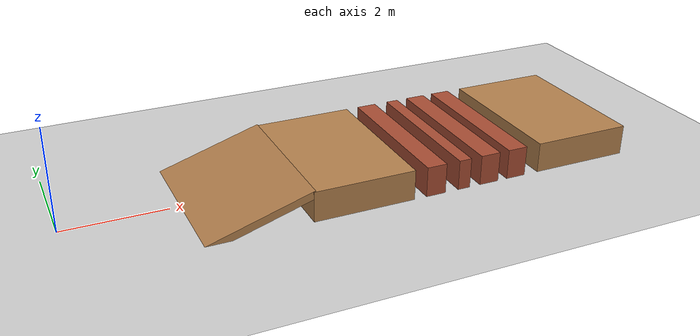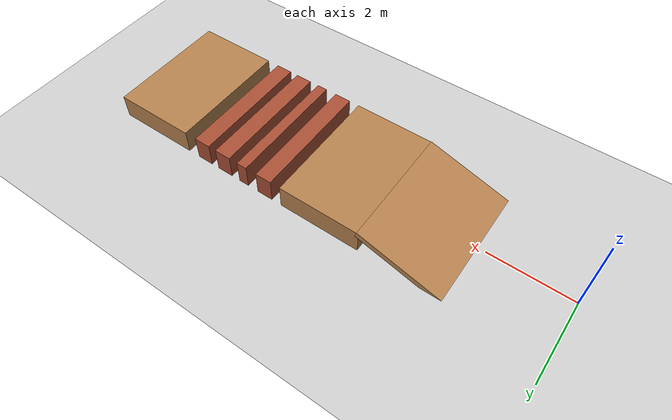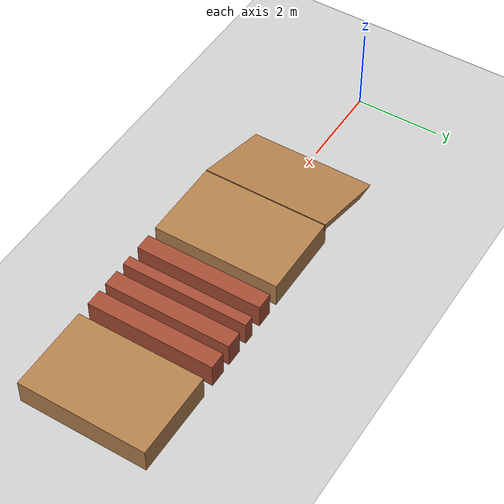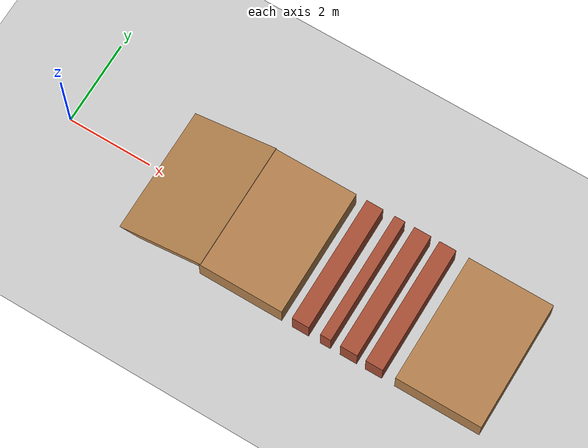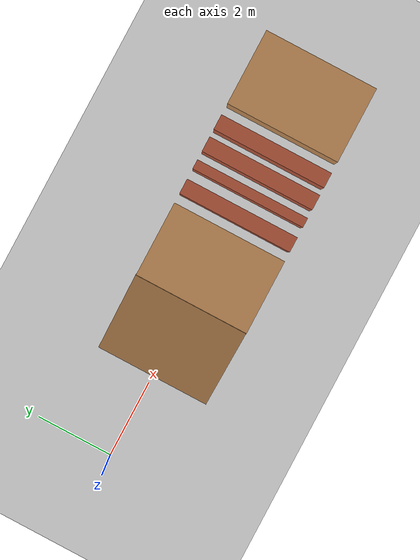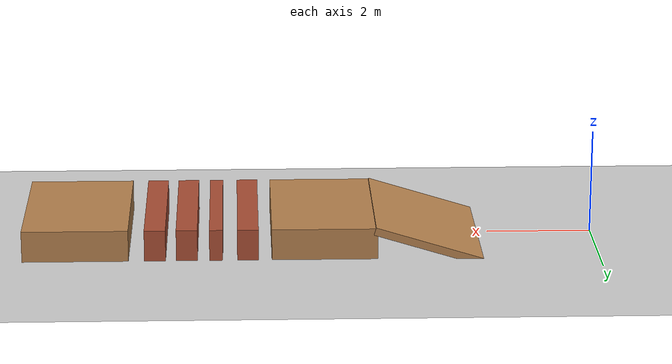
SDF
<?xml version="1.0"?>
<sdf version="1.5">
  <world name="default">

    <physics type="ode">
      <max_step_size>0.001</max_step_size>
      <real_time_factor>1</real_time_factor>
      <real_time_update_rate>600</real_time_update_rate>
      <gravity>0 0 -9.81</gravity>
      <ode>
        <solver>
          <type>quick</type>
          <iters>50</iters>
          <sor>1.3</sor>
        </solver>
        <constraints>
          <cfm>0.0</cfm>
          <erp>0.2</erp>
          <contact_max_correcting_vel>10.0</contact_max_correcting_vel>
          <contact_surface_layer>0.001</contact_surface_layer>
        </constraints>
      </ode>
    </physics>

    <scene>
      <sky>
        <clouds>
          <speed>12</speed>
        </clouds>
      </sky>
    </scene>
    <!-- A global light source -->
    <include>
      <uri>model://sun</uri>
    </include>
    <!-- A ground plane -->
    <include>
      <uri>model://ground_plane</uri>
    </include>
    <!-- environment blocks, obstacles or stairs -->
    <model name='stepping stone right'>
      <pose frame=''>0 0.0 0.0 0 -0 0</pose>

      <link name='slope'>
        <pose frame=''>3.2 0.009 0.03 0 -0 0</pose>
        <visual name='Stairs_1_Visual_0'>
          <pose frame=''>-0.375 -0 0.075 -0.3 0 1.5708</pose>
          <geometry>
            <box>
              <size>3 3 0.15</size>
            </box>
          </geometry>
          <material>
            <script>
              <uri>file://media/materials/scripts/gazebo.material</uri>
              <name>Gazebo/Wood</name>
            </script>
            <ambient>1 1 1 1</ambient>
          </material>
          <meta>
            <layer>0</layer>
          </meta>
        </visual>
        <collision name='Stairs_1_Collision_0'>
          <geometry>
            <box>
              <size>3 3 0.15</size>
            </box>
          </geometry>
          <pose frame=''>-0.375 -0 0.075 -0.3 0 1.5708</pose>
        </collision>
      </link>

      <link name="floor3">
        <pose>5.2 0 0.3 0 0 0</pose>
        <collision name="floor3_collision">
          <geometry>
            <box>
              <size>2 3 0.6</size>
            </box>
          </geometry>
        </collision>
        <visual name="floor3_visual">
          <geometry>
            <box>
              <size>2 3 0.6</size>
            </box>
          </geometry>
          <material>
            <script>
              <uri>file://media/materials/scripts/gazebo.material</uri>
              <name>Gazebo/Wood</name>
            </script>
            <ambient>1 1 1 1</ambient>
          </material>
        </visual>
      </link>

      <link name='stones'>
        <pose frame=''>6.8 .0 0 0 -0 0</pose>
        <visual name='stone_1_Visual_0'>
          <pose frame=''>-0.15 -0 0.3 0 -0 1.5708</pose>
          <geometry>
            <box>
              <size>3 0.4 0.6</size>
            </box>
          </geometry>
          <material>
            <script>
              <uri>file://media/materials/scripts/gazebo.material</uri>
              <name>Gazebo/Bricks</name>
            </script>
            <ambient>1 1 1 1</ambient>
          </material>
          <meta>
            <layer>0</layer>
          </meta>
        </visual>
        <collision name='stone_1_Collision_0'>
          <geometry>
            <box>
              <size>3 0.4 0.6</size>
            </box>
          </geometry>
          <pose frame=''>-0.15 -0 0.3 0 -0 1.5708</pose>
        </collision>
        <visual name='stone_1_Visual_1'>
          <pose frame=''>0.45 -0 0.3 0 -0 1.5708</pose>
          <geometry>
            <box>
              <size>3 0.25 0.6</size>
            </box>
          </geometry>
          <material>
            <script>
              <uri>file://media/materials/scripts/gazebo.material</uri>
              <name>Gazebo/Bricks</name>
            </script>
            <ambient>1 1 1 1</ambient>
          </material>
          <meta>
            <layer>0</layer>
          </meta>
        </visual>
        <collision name='stone_1_Collision_1'>
          <geometry>
            <box>
              <size>3 0.25 0.6</size>
            </box>
          </geometry>
          <pose frame=''>0.45 -0 0.3 0 -0 1.5708</pose>
        </collision>
        <visual name='stone_1_Visual_2'>
          <pose frame=''>1.0 0 0.3 0 -0 1.5708</pose>
          <geometry>
            <box>
              <size>3 0.4 0.6</size>
            </box>
          </geometry>
          <material>
            <script>
              <uri>file://media/materials/scripts/gazebo.material</uri>
              <name>Gazebo/Bricks</name>
            </script>
            <ambient>1 1 1 1</ambient>
          </material>
          <meta>
            <layer>0</layer>
          </meta>
        </visual>
        <collision name='stone_1_Collision_2'>
          <geometry>
            <box>
              <size>3 0.4 0.6</size>
            </box>
          </geometry>
          <pose frame=''>1.0 0 0.3 0 -0 1.5708</pose>
        </collision>
        <visual name='stone_1_Visual_3'>
          <pose frame=''>1.6 0 0.3 0 -0 1.5708</pose>
          <geometry>
            <box>
              <size>3 0.4 0.6</size>
            </box>
          </geometry>
          <material>
            <script>
              <uri>file://media/materials/scripts/gazebo.material</uri>
              <name>Gazebo/Bricks</name>
            </script>
            <ambient>1 1 1 1</ambient>
          </material>
          <meta>
            <layer>0</layer>
          </meta>
        </visual>
        <collision name='stone_1_Collision_3'>
          <geometry>
            <box>
              <size>3 0.4 0.6</size>
            </box>
          </geometry>
          <pose frame=''>1.6 0 0.3 0 -0 1.5708</pose>
        </collision>
      </link>

      <link name="floor4">
        <pose>9.9 0 0.3 0 0 0</pose>
        <collision name="floor3_collision">
          <geometry>
            <box>
              <size>2 3 0.6</size>
            </box>
          </geometry>
        </collision>
        <visual name="floor3_visual">
          <geometry>
            <box>
              <size>2 3 0.6</size>
            </box>
          </geometry>
          <material>
            <script>
              <uri>file://media/materials/scripts/gazebo.material</uri>
              <name>Gazebo/Wood</name>
            </script>
            <ambient>1 1 1 1</ambient>
          </material>
        </visual>
      </link>

      <static>1</static>
    </model>
  </world>
</sdf>
